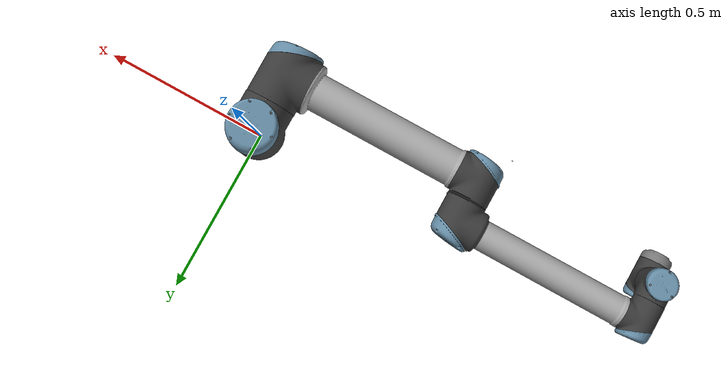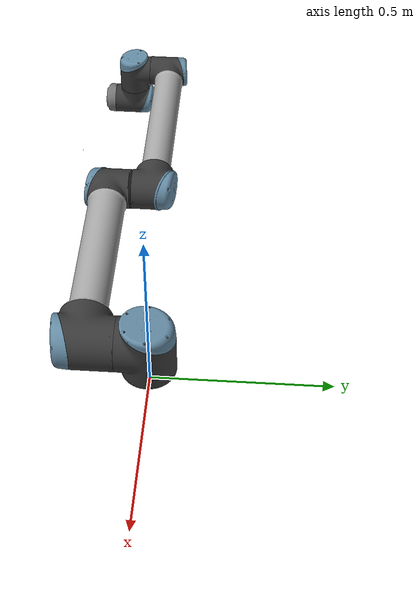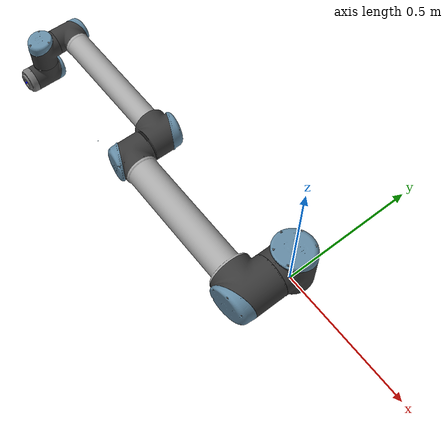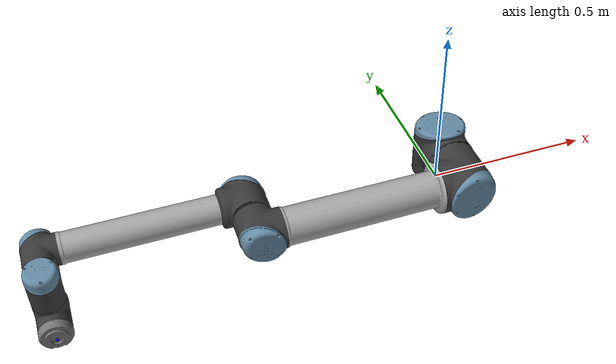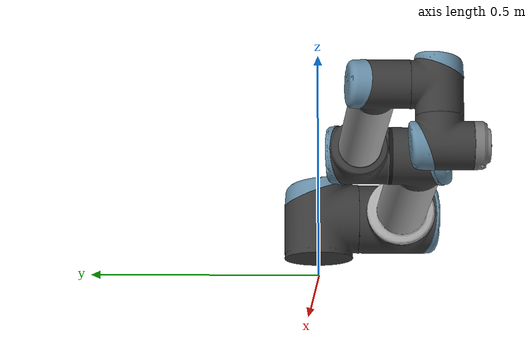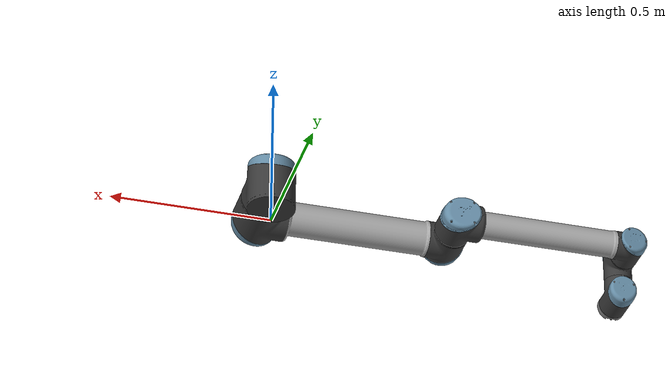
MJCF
<mujoco model="ur10"><compiler angle="radian" autolimits="true" /><default><default class="ur_vis"><geom type="mesh" contype="0" conaffinity="0" group="1" /></default></default><asset><mesh name="ur10_shoulder_0" file="shoulder_0.stl" /><mesh name="ur10_shoulder_1" file="shoulder_1.stl" /><mesh name="ur10_shoulder_2" file="shoulder_2.stl" /><mesh name="ur10_upper_arm_0" file="upper_arm_0.stl" /><mesh name="ur10_upper_arm_1" file="upper_arm_1.stl" /><mesh name="ur10_upper_arm_2" file="upper_arm_2.stl" /><mesh name="ur10_upper_arm_3" file="upper_arm_3.stl" /><mesh name="ur10_forearm_0" file="forearm_0.stl" /><mesh name="ur10_forearm_1" file="forearm_1.stl" /><mesh name="ur10_forearm_2" file="forearm_2.stl" /><mesh name="ur10_forearm_3" file="forearm_3.stl" /><mesh name="ur10_forearm_4" file="forearm_4.stl" /><mesh name="ur10_wrist_1_0" file="wrist_1_0.stl" /><mesh name="ur10_wrist_1_1" file="wrist_1_1.stl" /><mesh name="ur10_wrist_1_2" file="wrist_1_2.stl" /><mesh name="ur10_wrist_2_0" file="wrist_2_0.stl" /><mesh name="ur10_wrist_2_1" file="wrist_2_1.stl" /><mesh name="ur10_wrist_2_2" file="wrist_2_2.stl" /><mesh name="ur10_wrist_3_0" file="wrist_3_0.stl" /></asset><worldbody><body name="ur_base"><inertial pos="0 0 0" mass="4.0" diaginertia="0.008 0.008 0.008" /><body name="ur_shoulder" pos="0 0 0.1273" quat="1 0 0 0"><joint name="joint_0" type="hinge" axis="0 0 1" damping="2" armature="0.01" /><inertial pos="0.021 -0.027 0" mass="7.1" diaginertia="0.0142 0.0142 0.0142" /><geom class="ur_vis" mesh="ur10_shoulder_0" pos="0 0 0" quat="6.123234e-17 0 0 1" rgba="0.2227451 0.2227451 0.2227451 1" /><geom class="ur_vis" mesh="ur10_shoulder_1" pos="0 0 0" quat="6.123234e-17 0 0 1" rgba="0.3921569 0.5427451 0.64 1" /><geom class="ur_vis" mesh="ur10_shoulder_2" pos="0 0 0" quat="6.123234e-17 0 0 1" rgba="0.4643137 0.4643137 0.4643137 1" /><body name="ur_upper_arm" pos="0 0 0" quat="0.70710678 0.70710678 0 0"><joint name="joint_1" type="hinge" axis="0 0 1" damping="2" armature="0.01" /><inertial pos="-0.232 0 0.158" mass="12.7" diaginertia="0.0254 0.0254 0.0254" /><geom class="ur_vis" mesh="ur10_upper_arm_0" pos="0 0 0.220941" quat="0.5 0.5 -0.5 -0.5" rgba="0.2227451 0.2227451 0.2227451 1" /><geom class="ur_vis" mesh="ur10_upper_arm_1" pos="0 0 0.220941" quat="0.5 0.5 -0.5 -0.5" rgba="0.3921569 0.5427451 0.64 1" /><geom class="ur_vis" mesh="ur10_upper_arm_2" pos="0 0 0.220941" quat="0.5 0.5 -0.5 -0.5" rgba="0.4643137 0.4643137 0.4643137 1" /><geom class="ur_vis" mesh="ur10_upper_arm_3" pos="0 0 0.220941" quat="0.5 0.5 -0.5 -0.5" rgba="0.6563138 0.6563138 0.6563138 1" /><body name="ur_forearm" pos="-0.612 0 0" quat="1 0 0 0"><joint name="joint_2" type="hinge" axis="0 0 1" damping="2" armature="0.01" /><inertial pos="-0.3323 0 0.068" mass="4.27" diaginertia="0.00854 0.00854 0.00854" /><geom class="ur_vis" mesh="ur10_forearm_0" pos="0 0 0.049042" quat="0.5 0.5 -0.5 -0.5" rgba="0.2227451 0.2227451 0.2227451 1" /><geom class="ur_vis" mesh="ur10_forearm_1" pos="0 0 0.049042" quat="0.5 0.5 -0.5 -0.5" rgba="0.3921569 0.5427451 0.64 1" /><geom class="ur_vis" mesh="ur10_forearm_2" pos="0 0 0.049042" quat="0.5 0.5 -0.5 -0.5" rgba="0.4643137 0.4643137 0.4643137 1" /><geom class="ur_vis" mesh="ur10_forearm_3" pos="0 0 0.049042" quat="0.5 0.5 -0.5 -0.5" rgba="0.6563138 0.6563138 0.6563138 1" /><geom class="ur_vis" mesh="ur10_forearm_4" pos="0 0 0.049042" quat="0.5 0.5 -0.5 -0.5" rgba="0.08031373 0.08031373 0.08031373 1" /><body name="ur_wrist_1" pos="-0.5723 0 0.163941" quat="1 0 0 0"><joint name="joint_3" type="hinge" axis="0 0 1" damping="2" armature="0.01" /><inertial pos="0 -0.018 0.007" mass="2.0" diaginertia="0.004 0.004 0.004" /><geom class="ur_vis" mesh="ur10_wrist_1_0" pos="0 0 -0.1149" quat="0.70710678 0.70710678 0 0" rgba="0.2227451 0.2227451 0.2227451 1" /><geom class="ur_vis" mesh="ur10_wrist_1_1" pos="0 0 -0.1149" quat="0.70710678 0.70710678 0 0" rgba="0.3921569 0.5427451 0.64 1" /><geom class="ur_vis" mesh="ur10_wrist_1_2" pos="0 0 -0.1149" quat="0.70710678 0.70710678 0 0" rgba="0.4643137 0.4643137 0.4643137 1" /><body name="ur_wrist_2" pos="0 -0.1157 -2.3730467e-11" quat="0.70710678 0.70710678 0 0"><joint name="joint_4" type="hinge" axis="0 0 1" damping="2" armature="0.01" /><inertial pos="0 0.018 -0.007" mass="2.0" diaginertia="0.004 0.004 0.004" /><geom class="ur_vis" mesh="ur10_wrist_2_0" pos="0 0 -0.1158" quat="1 0 0 0" rgba="0.2227451 0.2227451 0.2227451 1" /><geom class="ur_vis" mesh="ur10_wrist_2_1" pos="0 0 -0.1158" quat="1 0 0 0" rgba="0.3921569 0.5427451 0.64 1" /><geom class="ur_vis" mesh="ur10_wrist_2_2" pos="0 0 -0.1158" quat="1 0 0 0" rgba="0.4643137 0.4643137 0.4643137 1" /><body name="ur_wrist_3" pos="0 0.0922 -1.8910536e-11" quat="0.70710678 -0.70710678 8.6595606e-17 8.8805355e-27"><joint name="joint_5" type="hinge" axis="0 0 1" damping="2" armature="0.01" /><inertial pos="0 0 -0.026" mass="0.365" diaginertia="0.00073 0.00073 0.00073" /><geom class="ur_vis" mesh="ur10_wrist_3_0" pos="0 0.001 -0.0922" quat="0.70710678 0.70710678 0 0" rgba="0.4643137 0.4643137 0.4643137 1" /><body name="flange_dh" pos="0 5.2535393e-11 4.7460924e-11" quat="1 -1.0255168e-10 -6.123234e-17 -6.123234e-17"><site name="flange" size="0.004" rgba="0 0 1 1" /></body></body></body></body></body></body></body></body></worldbody></mujoco>
